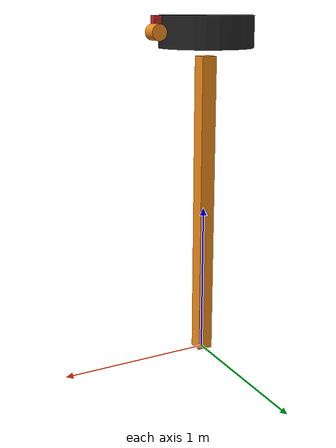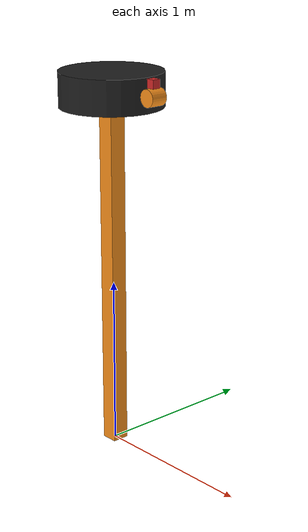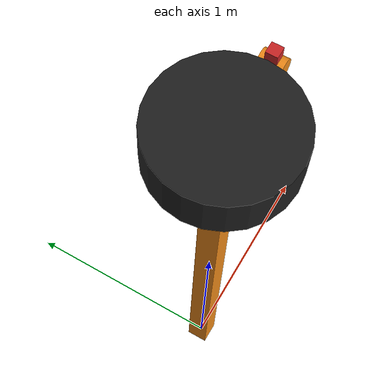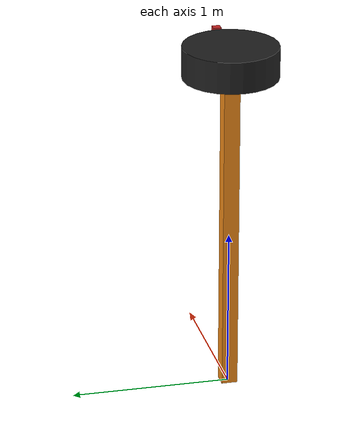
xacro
<?xml version="1.0"?>
<!-- Revolute-Revolute Manipulator -->
<robot name="ezbot" xmlns:xacro="http://www.ros.org/wiki/xacro">

  <!-- Constants for robot dimensions -->
  <xacro:property name="PI" value="3.1415926535897931"/>
  <xacro:property name="mass" value="1" /> <!-- arbitrary value for mass -->
  <xacro:property name="width" value="0.1" /> <!-- Square dimensions (widthxwidth) of beams -->
  <xacro:property name="height1" value="2" /> <!-- Link 1 -->
  <xacro:property name="height2" value="1" /> <!-- Link 2 -->
  <xacro:property name="height3" value="1" /> <!-- Link 3 -->
  <xacro:property name="cylradius1" value="0.3" />
  <xacro:property name="cylradius2" value="0.05" />
  <xacro:property name="cyl1height" value="0.2" />
  <xacro:property name="cyl2height" value="0.1" />
  <xacro:property name="camera_link" value="0.05" /> <!-- Size of square 'camera' box -->
  <xacro:property name="cam_arm" value="${cylradius2+camera_link}" />
  <xacro:property name="axel_offset" value="0.05" /> <!-- Space btw top of beam and the each joint -->

  <!-- Import all Gazebo-customization elements, including Gazebo colors -->
  <xacro:include filename="$(find ezbot_description)/urdf/ezbot.gazebo" />
  <!-- Import Rviz colors -->
  <xacro:include filename="$(find ezbot_description)/urdf/materials.xacro" />

  <!-- Used for fixing robot to Gazebo 'base_link' -->
  <link name="world"/>

  <joint name="fixed" type="fixed">
    <parent link="world"/>
    <child link="link1"/>
  </joint>

  <!-- Base Link -->
  <link name="link1">
    <collision>
      <origin xyz="0 0 ${height1/2}" rpy="0 0 0"/>
      <geometry>
	<box size="${width} ${width} ${height1}"/>
      </geometry>
    </collision>

    <visual>
      <origin xyz="0 0 ${height1/2}" rpy="0 0 0"/>
      <geometry>
	<box size="${width} ${width} ${height1}"/>
      </geometry>
      <material name="orange"/>
    </visual>

    <inertial>
      <origin xyz="0 0 ${height1/2}" rpy="0 0 0"/>
      <mass value="${mass}"/>
      <inertia
	  ixx="${mass / 12.0 * (width*width + height1*height1)}" ixy="0.0" ixz="0.0"
	  iyy="${mass / 12.0 * (height1*height1 + width*width)}" iyz="0.0"
	  izz="${mass / 12.0 * (width*width + width*width)}"/>
    </inertial>
  </link>

  <joint name="joint1" type="continuous">
    <parent link="link1"/>
    <child link="link2"/>
    <origin xyz="0 0 ${height1 +cyl1height/2 + axel_offset}" rpy="0 0 0"/>
    <axis xyz="0 0 1"/>
    <dynamics damping="0.7"/>
  </joint>

  <!-- Middle Link -->
  <link name="link2">
    <selfCollide>true</selfCollide>
    <collision>
      <origin xyz="0 0 0" rpy="0 0 0"/>
      <geometry>
	<cylinder radius="${cylradius1}" length="${cyl1height}"/>
      </geometry>
    </collision>

    <visual>
      <origin xyz="0 0 0" rpy="0 0 0"/>
      <geometry>
	<cylinder radius="${cylradius1}" length="${cyl1height}"/>
      </geometry>
      <material name="black"/>
    </visual>

    <inertial>
      <origin xyz="0 0 0" rpy="0 0 0"/>
      <mass value="${mass}"/>
      <inertia
	  ixx="${mass / 12.0 * (cylradius1*cylradius1 + cyl1height*cyl1height)}" ixy="0.0" ixz="0.0"
	  iyy="${mass / 12.0 * (cyl1height*cyl1height + cylradius1*cylradius1)}" iyz="0.0"
	  izz="${mass / 12.0 * (cylradius1*cylradius1 + cylradius1*cylradius1)}"/>
    </inertial>
  </link>

  <joint name="joint2" type="continuous">
    <parent link="link2"/>
    <child link="link3"/>
    <origin xyz="${cylradius1+cylradius2} 0 0" rpy="0 0 0"/>
    <axis xyz="0 1 0"/>
    <dynamics damping="0.7"/>
  </joint>

  <!-- Top Link -->
  <link name="link3">
    <selfCollide>true</selfCollide>
    <collision>
      <origin xyz="0 0 0" rpy="1.5707 0 0"/>
      <geometry>
	<cylinder radius="${cylradius2}" length="${cyl2height}"/>
      </geometry>
    </collision>

    <visual>
      <origin xyz="0 0 0" rpy="1.5707 0 0"/>
      <geometry>
	<cylinder radius="${cylradius2}" length="${cyl2height}"/>
      </geometry>
      <material name="orange"/>
    </visual>

    <inertial>
      <origin xyz="0 0 0" rpy="1.5707 0 0"/>
      <mass value="${mass}"/>
      <inertia
	  ixx="${mass / 12.0 * (cam_arm*cam_arm + cyl2height*cyl2height)}" ixy="0.0" ixz="0.0"
	  iyy="${mass / 12.0 * (cyl2height*cyl2height + cam_arm*cam_arm)}" iyz="0.0"
	  izz="${mass / 12.0 * (cam_arm*cam_arm + cam_arm*cam_arm)}"/>
    </inertial>
  </link>

  <joint name="camera_joint" type="fixed">
    <axis xyz="0 0 1" />
    <origin xyz="0 0 ${cylradius2+camera_link/2}" rpy="0 0 0"/>
    <parent link="link3"/>
    <child link="camera_link"/>

  </joint>

  <!-- Camera -->
  <link name="camera_link">
    <selfCollide>true</selfCollide>
    <collision>
      <origin xyz="0 0 0" rpy="0 0 0"/>
      <geometry>
	<box size="${camera_link} ${camera_link} ${camera_link}"/>
      </geometry>
    </collision>

    <visual>
      <origin xyz="0 0 0" rpy="0 0 0"/>
      <geometry>
	<box size="${camera_link} ${camera_link} ${camera_link}"/>
      </geometry>
      <material name="red"/>
    </visual>

    <inertial>
      <mass value="1e-5" />
      <origin xyz="0 0 0" rpy="0 0 0"/>
      <inertia ixx="1e-6" ixy="0" ixz="0" iyy="1e-6" iyz="0" izz="1e-6" />
    </inertial>
  </link>

  <transmission name="tran1">
    <type>transmission_interface/SimpleTransmission</type>
    <joint name="joint1">
      <hardwareInterface>VelocityJointInterface</hardwareInterface>
    </joint>
    <actuator name="motor1">
      <hardwareInterface>VelocityJointInterface</hardwareInterface>
      <mechanicalReduction>1</mechanicalReduction>
    </actuator>
  </transmission>

  <transmission name="tran2">
    <type>transmission_interface/SimpleTransmission</type>
    <joint name="joint2">
      <hardwareInterface>VelocityJointInterface</hardwareInterface>
    </joint>
    <actuator name="motor2">
      <hardwareInterface>VelocityJointInterface</hardwareInterface>
      <mechanicalReduction>1</mechanicalReduction>
    </actuator>
  </transmission>

</robot>
